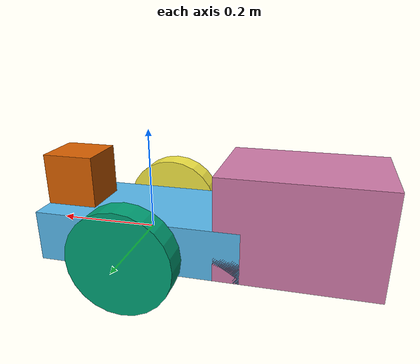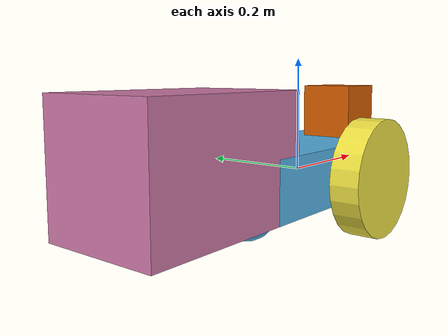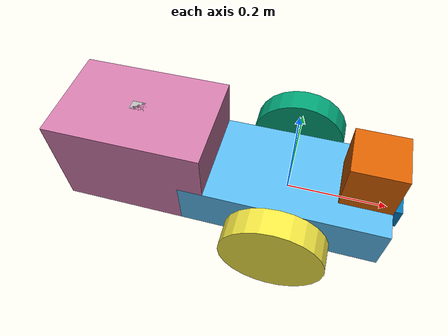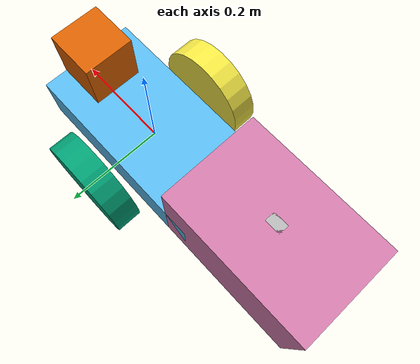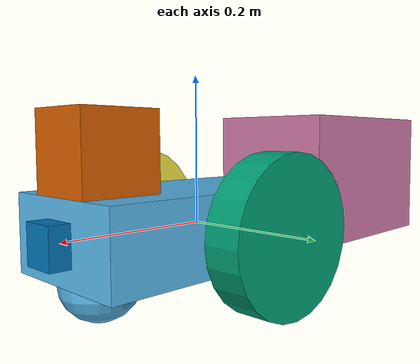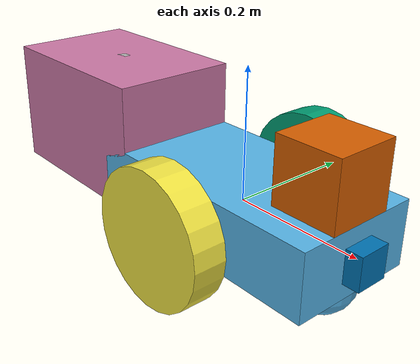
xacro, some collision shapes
<?xml version='1.0'?>

<robot name="udacity_bot" xmlns:xacro="http://www.ros.org/wiki/xacro">
<xacro:include filename="$(find udacity_bot)/urdf/udacity_bot.gazebo" />

  <link name="robot_footprint"></link>

  <joint name="robot_footprint_joint" type="fixed">
    <origin xyz="0 0 0" rpy="0 0 0" />
    <parent link="robot_footprint"/>
    <child link="chassis" />
  </joint>

  <link name='chassis'>
    <pose>0 0 0.1 0 0 0</pose>

    <inertial>
      <mass value="15.0"/>
      <origin xyz="0.0 0 0" rpy=" 0 0 0"/>
      <inertia
          ixx="0.1" ixy="0" ixz="0"
          iyy="0.1" iyz="0"
          izz="0.1"
      />
    </inertial>

    <collision name='collision'>
      <origin xyz="0 0 0" rpy=" 0 0 0"/>
      <geometry>
        <box size=".4 .2 .1"/>
      </geometry>
    </collision>

    <visual name='chassis_visual'>
      <origin xyz="0 0 0" rpy=" 0 0 0"/>
      <geometry>
        <box size=".4 .2 .1"/>
      </geometry>
    </visual>

    <collision name='back_caster_collision'>
      <origin xyz="-0.15 0 -0.05" rpy=" 0 0 0"/>
      <geometry>
        <sphere radius="0.0499"/>
      </geometry>
    </collision>

    <visual name='back_caster_visual'>
      <origin xyz="-0.15 0 -0.05" rpy=" 0 0 0"/>
      <geometry>
        <sphere radius="0.05"/>
      </geometry>
    </visual>

    <collision name='front_caster_collision'>
      <origin xyz="0.15 0 -0.05" rpy=" 0 0 0"/>
      <geometry>
        <sphere radius="0.0499"/>
      </geometry>
    </collision>

    <visual name='front_caster_visual'>
      <origin xyz="0.15 0 -0.05" rpy=" 0 0 0"/>
      <geometry>
        <sphere radius="0.05"/>
      </geometry>
    </visual>

  </link>

<link name="left_wheel">
	<pose>0 0 0 0 0 0</pose>

   <inertial>
      <mass value="5"/>
      <origin xyz="0 0 0" ryp="0 1.5707 1.5707"/>
      <inertia
          ixx="0.1" ixy="0" ixz="0"
          iyy="0.1" iyz="0"
          izz="0.1"
      />
	</inertial>

    <collision name='left_wheel_collision'>
      <origin xyz="0 0 0" rpy=" 0 1.5707 1.5707"/>
      <geometry>
        <cylinder radius="0.1" length="0.05"/>
      </geometry>
    </collision>

    <visual name='left_wheel_visual'>
      <origin xyz="0 0 0" rpy=" 0 1.5707 1.5707"/>
      <geometry>
        <cylinder radius="0.1" length="0.05"/>
      </geometry>
    </visual>

</link>

<joint type="continuous" name="left_wheel_hinge">
    <origin xyz="0 0.15 0" rpy="0 0 0"/>
    <child link="left_wheel"/>
    <parent link="chassis"/>
    <axis xyz="0 1 0" rpy="0 0 0"/>
    <limit effort="10000" velocity="1000"/>
    <dynamics damping="1.0" friction="1.0"/>
  </joint>

<link name="right_wheel">
	<pose>0 0 0 0 0 0</pose>

   <inertial>
      <mass value="5"/>
      <origin xyz="0 0 0" ryp="0 1.5707 1.5707"/>
      <inertia
          ixx="0.1" ixy="0" ixz="0"
          iyy="0.1" iyz="0"
          izz="0.1"
      />
	</inertial>

    <collision name='rifht_wheel_collision'>
      <origin xyz="0 0 0" rpy=" 0 1.5707 1.5707"/>
      <geometry>
        <cylinder radius="0.1" length="0.05"/>
      </geometry>
    </collision>

    <visual name='right_wheel_visual'>
      <origin xyz="0 0 0" rpy=" 0 1.5707 1.5707"/>
      <geometry>
        <cylinder radius="0.1" length="0.05"/>
      </geometry>
    </visual>
</link>

<joint type="continuous" name="right_wheel_hinge">
    <origin xyz="0 -0.15 0" rpy="0 0 0"/>
    <child link="right_wheel"/>
    <parent link="chassis"/>
    <axis xyz="0 1 0" rpy="0 0 0"/>
    <limit effort="10000" velocity="1000"/>
    <dynamics damping="1.0" friction="1.0"/>
</joint>

    <link name='camera'>
    <pose>0 0 0 0 0 0</pose>

    <inertial>
      <mass value="0.1"/>
      <origin xyz="0 0 0" rpy=" 0 0 0"/>
      <inertia
          ixx="0.000001" ixy="0" ixz="0"
          iyy="0.1" iyz="0"
          izz="0.000001"
      />
    </inertial>

    <collision name='collision'>
      <origin xyz="0 0 0" rpy=" 0 0 0"/>
      <geometry>
        <box size=".05 .05 .05"/>
      </geometry>
    </collision>

    <visual name='camera_visual'>
      <origin xyz="0 0 0" rpy=" 0 0 0"/>
      <geometry>
        <box size=".05 .05 .05"/>
      </geometry>
    </visual>
</link>

<joint type="fixed" name="camera_joint">
    <origin xyz="0.2 0 0" rpy="0 0 0"/>
    <child link="camera"/>
    <parent link="chassis"/>
    <axis xyz="0 0 0" rpy="0 0 0"/>
</joint>

    <link name='hokuyo'>
    <pose>0 0 0 0 0 0</pose>

    <inertial>
      <mass value="0.1"/>
      <origin xyz="0 0 0" rpy=" 0 0 0"/>
      <inertia
          ixx="0.000001" ixy="0" ixz="0"
          iyy="0.000001" iyz="0"
          izz="0.000001"
      />
    </inertial>

    <collision name='collision'>
      <origin xyz="0 0 0" rpy=" 0 0 0"/>
      <geometry>
        <box size=".1 .1 .1"/>
      </geometry>
    </collision>

    <visual name='hokuyo_visual'>
      <origin xyz="0 0 0" rpy=" 0 0 0"/>
      <geometry>
        <mesh filename="package://udacity_bot/meshes/hokuyo.dae"/>
      </geometry>
    </visual>
</link>

<joint type="fixed" name="hokuyo_joint">
    <origin xyz="0.15 0 .1" rpy="0 0 0"/>
    <child link="hokuyo"/>
    <parent link="chassis"/>
    <axis xyz="0 0 0" rpy="0 0 0"/>
</joint>

<!-- MINGLIN personal robot urdf define -->

<link name='truck_dump'>
    <pose>0 0 0 0 0 0</pose>

    <inertial>
      <mass value="1.0"/>
      <origin xyz="0.0 0 0.05" rpy=" 0 0 0"/>
      <inertia
          ixx="0.1" ixy="0" ixz="0"
          iyy="0.1" iyz="0"
          izz="0.1"
      />
    </inertial>

    <collision name='collision_truck_dump'>
      <origin xyz="0 0 0.05" rpy=" 0 0 0"/>
      <geometry>
        <box size="0.3 0.2 0.2"/>
      </geometry>
    </collision>

    <visual name='chassis_visual'>
      <origin xyz="0 0 0.05" rpy=" 0 0 0"/>
      <geometry>
        <box size="0.3 0.2 0.2"/>
      </geometry>
    </visual>
</link>

<joint type="fixed" name="truck_dump">
    <origin xyz="-0.3 0.0 0" rpy="0 0 0"/>
    <child link="truck_dump"/>
    <parent link="chassis"/>
    <axis xyz="1 0 0" rpy="0 0 0"/>
    <limit effort="10000" velocity="1000"/>
    <dynamics damping="1.0" friction="1.0"/>
  </joint>

  <link name='chimney'>
    <pose>0 0 0 0 0 0</pose>

    <inertial>
      <mass value="1.0"/>
      <origin xyz="0.0 0 0" rpy=" 0 0 0"/>
      <inertia
          ixx="0.1" ixy="0" ixz="0"
          iyy="0.1" iyz="0"
          izz="0.1"
      />
    </inertial>

    <collision name='collision_chimney'>
      <origin xyz="0 0 0" rpy=" 0 0 0"/>
      <geometry>
        <box size="0.03 0.02 0.1"/>
      </geometry>
    </collision>

    <visual name='chimney_visual'>
      <origin xyz="0 0 0" rpy=" 0 0 0"/>
      <geometry>
        <box size="0.03 0.02 0.1"/>
      </geometry>
    </visual>
</link>

<joint type="fixed" name="chimney">
    <origin xyz="-0.3 0.0 0.1" rpy="0 0 0"/>
    <child link="chimney"/>
    <parent link="chassis"/>
    <axis xyz="1 0 0" rpy="0 0 0"/>
    <limit effort="10000" velocity="1000"/>
    <dynamics damping="1.0" friction="1.0"/>
  </joint>
</robot>
